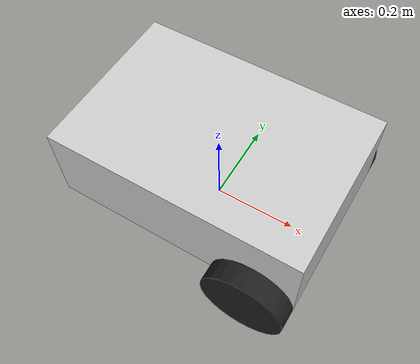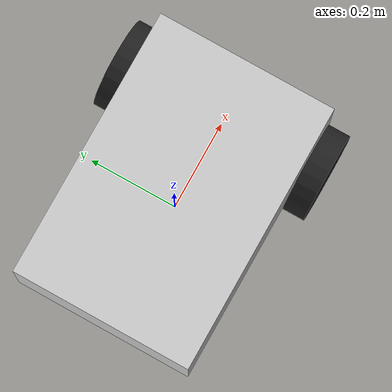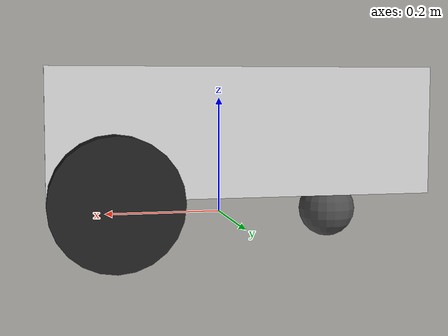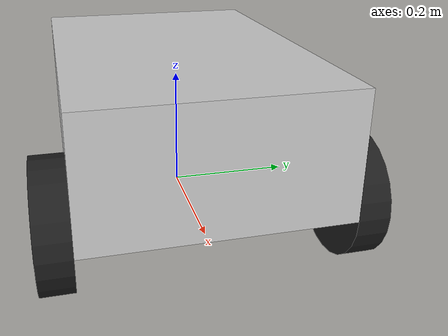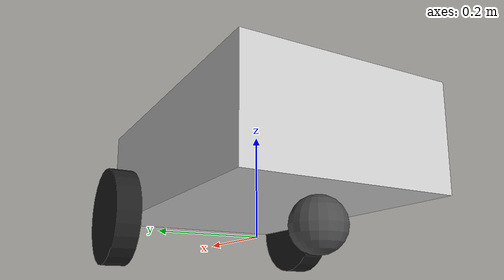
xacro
<?xml version="1.0"?>
<robot name="simpleArm" xmlns:xacro="http://www.ros.org/wiki/xacro">
  <xacro:include filename="$(find schunk_description)/urdf/materials.urdf.xacro" />
  <link name="mobile_base_link">
    <visual>
      <geometry>
        <box size="0.6 0.4 0.2"/>
      </geometry>
      <origin rpy="0 0 0" xyz="0 0 0.15"/>
      <material name="Schunk/LightGrey"/>
    </visual>
    <collision>
      <geometry>
        <box size="0.6 0.4 0.2"/>
      </geometry>
    </collision>
  <visual >
      <origin xyz="-0.2 0 0" rpy="0 0 0" />
      <geometry>
        <sphere radius="0.05"/>
      </geometry>
      <material name="Schunk/DarkGrey"/>
  </visual>
  <collision name='castor_front_collision'>
      <origin xyz="-0.2 0 0" rpy="0 0 0" />
      <geometry>
        <sphere radius="0.05"/>
      </geometry>
  </collision>
  </link>

<!--link of right wheel" /-->
  <link name="mobile_right_wheel">
    <visual>
      <geometry>
        <cylinder length="0.05" radius="0.1"/>
      </geometry>
      <origin rpy="1.57075 0 0" xyz="0 0 0"/>
      <material name="Schunk/Black"/>
    </visual>
    <collision>
      <geometry>
        <cylinder length="0.05" radius="0.1"/>
      </geometry>
    </collision>
  </link>

  <joint name="base_to_right_wheel" type="fixed">
    <parent link="mobile_base_link"/>
    <child link="mobile_right_wheel"/>
    <origin xyz="0.2 0.225 0.05"/>
  </joint>

<!--link of left wheel" /-->
  <link name="mobile_left_wheel">
    <visual>
      <geometry>
        <cylinder length="0.05" radius="0.1"/>
      </geometry>
      <origin rpy="1.57075 0 0" xyz="0 0 0"/>
      <material name="Schunk/Black"/>
    </visual>
    <collision>
      <geometry>
        <cylinder length="0.05" radius="0.1"/>
      </geometry>
    </collision>
  </link>

  <joint name="base_to_left_wheel" type="fixed">
    <parent link="mobile_base_link"/>
    <child link="mobile_left_wheel"/>
    <origin xyz="0.2 -0.225 0.05"/>
  </joint>

</robot>
